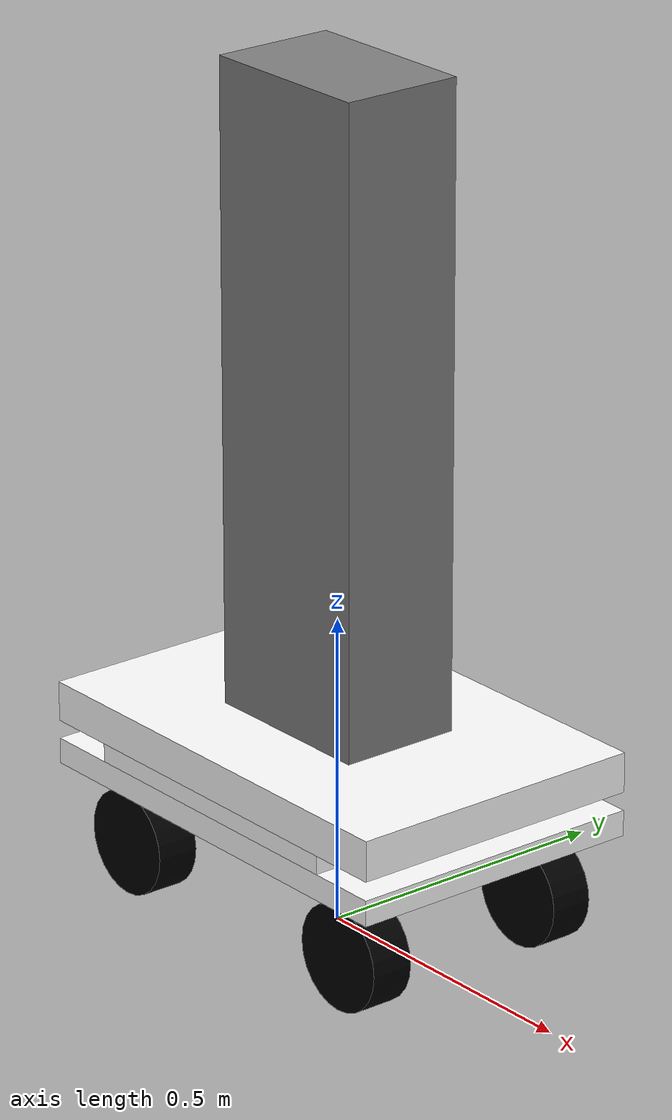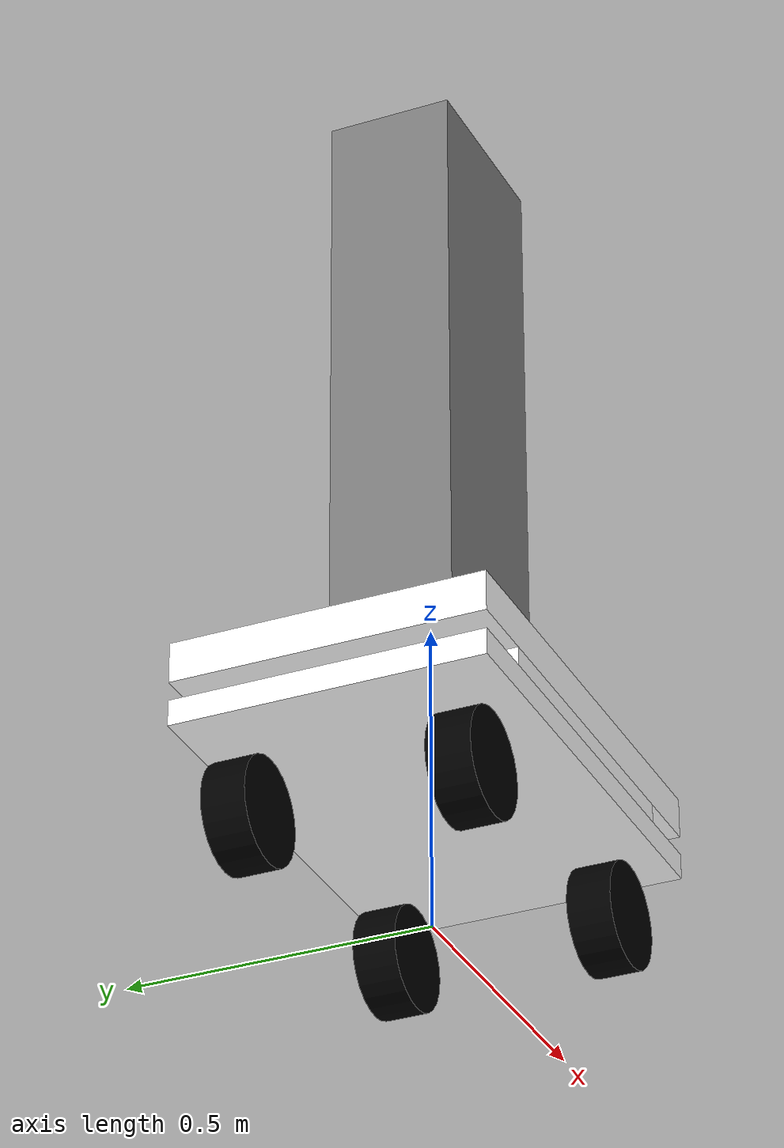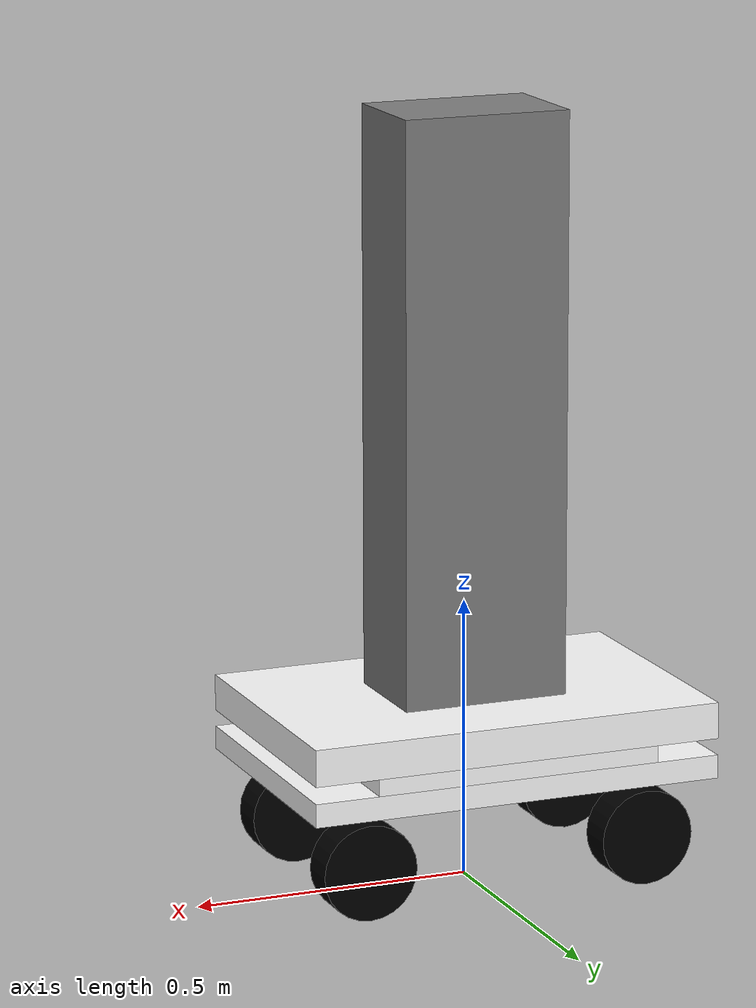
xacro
<?xml version="1.0"?>
<robot name="smartcar" xmlns:xacro="http://www.ros.org/wiki/xacro">
  	<xacro:property name="M_PI" value="3.14159265358"/>

  	<!-- Macro for SmartCar body. Including Gazebo extensions, but does not include Kinect -->
  	<include filename="$(find smartcar_description)/urdf/xacro/smartcar_sim.xacro"/>
	<xacro:include filename="$(find smartcar_description)/urdf/xacro/sensors/lidar.xacro" />
	<xacro:include filename="$(find smartcar_description)/urdf/xacro/sensors/imu.xacro" />

  	<xacro:macro name="smartcar_body">

		<xacro:property name="wheel_m" value="2.0"/>
		<xacro:property name="wheel_r" value="0.085"/>
		<xacro:property name="wheel_h" value="0.07"/>

		<xacro:property name="base_link_H" value="0.042"/>
		<xacro:property name="base_middle_link_H" value="0.03"/>
		<xacro:property name="base_top_link_H" value="0.065"/>
		<xacro:property name="slider_link_H" value="1.031"/>

		<!-- Macro for inertia matrix -->
		<xacro:macro name="cube_inertial_matrix" params="m a b c">
			<inertial>
				<mass value="${m}" />
				<inertia ixx="${m*(b*b+c*c)/12}" ixy="0" ixz="0"
					iyy="${m*(a*a+c*c)/12}" iyz="0"
					izz="${m*(a*a+b*b)/12}" />
			</inertial>
		</xacro:macro>

		<xacro:macro name="sphere_inertial_matrix" params="m r">
			<inertial>
				<mass value="${m}" />
				<inertia ixx="${m**r*r*2/5}" ixy="0" ixz="0"
						 iyy="${m**r*r*2/5}" iyz="0"
						 izz="${m**r*r*2/5}" />
			</inertial>
		</xacro:macro>

		<xacro:macro name="cylinder_inertial_matrix" params="m r h">
			<inertial>
				<mass value="${m}" />
				<inertia ixx="${m*(3*r*r+h*h)/12}" ixy = "0" ixz = "0"
					iyy="${m*(3*r*r+h*h)/12}" iyz = "0"
					izz="${m*r*r/2}" />
			</inertial>
		</xacro:macro>

		<link name="base_footprint">
			<visual>
				<origin xyz="0 0 0" rpy="0 0 0" />
				<geometry>
					<box size="0.001 0.001 0.001" />
				</geometry>
			</visual>
		</link>

		<joint name="base_footprint_joint" type="fixed">
			<origin xyz="0 0 ${0.203 + base_link_H/2}" rpy="0 0 0" />
			<parent link="base_footprint"/>
			<child link="base_link" />
		</joint>

		<link name="base_link">
			<inertial>
				<origin xyz="0 0 0"/>
				<mass value="5.0" />
				<inertia ixx="${5*(0.50*0.50+0.042*0.042)/12}" ixy="0.0" ixz="0.0" iyy="${5*(0.75*0.75+0.042*0.042)/12}" iyz="0.0" izz="${5*(0.5*0.5+0.75*0.75)/12}"/>
			</inertial>
			<visual>
				<origin xyz="0 0 0" rpy="0 0 0" />
				<geometry>
					<box size="0.75 0.50 ${base_link_H}"/>
				</geometry>
				<material name="white">
					<color rgba="1 1 1 1"/>
				</material>
			</visual>
			<collision>
				<origin xyz="0 0 0" rpy="0 0 0" />
				<geometry>
					<box size="0.75 0.50 0.042" />
				</geometry>
			</collision>
		</link>

		<joint name="base_middle_joint" type="fixed">
			<origin xyz="0 0 ${(base_link_H + base_middle_link_H) / 2}" rpy="0 0 0" />
			<parent link="base_link"/>
			<child link="base_middle_link" />
		</joint>

		<link name="base_middle_link">
			<xacro:cube_inertial_matrix m="1.0" a="0.52" b="0.50" c="${base_middle_link_H}" />
			<visual>
				<origin xyz="0 0 0" rpy="0 0 0" />
				<geometry>
					<box size="0.52 0.50 ${base_middle_link_H}"/>
				</geometry>
				<material name="white">
					<color rgba="1 1 1 1"/>
				</material>
			</visual>
			<collision>
				<origin xyz="0 0 0" rpy="0 0 0" />
				<geometry>
					<box size="0.52 0.50 ${base_middle_link_H}" />
				</geometry>
			</collision>
		</link>

		<joint name="base_top_joint" type="fixed">
			<origin xyz="0 0 ${(base_top_link_H + base_middle_link_H) / 2}" rpy="0 0 0" />
			<parent link="base_middle_link"/>
			<child link="base_top_link" />
		</joint>

		<link name="base_top_link">
			<xacro:cube_inertial_matrix m="1.0" a="0.75" b="0.50" c="${base_top_link_H}" />
			<visual>
				<origin xyz="0 0 0" rpy="0 0 0" />
				<geometry>
					<box size="0.75 0.50 ${base_top_link_H}"/>
				</geometry>
				<material name="white">
					<color rgba="1 1 1 1"/>
				</material>
			</visual>
			<collision>
				<origin xyz="0 0 0" rpy="0 0 0" />
				<geometry>
					<box size="0.75 0.50 ${base_top_link_H}" />
				</geometry>
			</collision>
		</link>

		<joint name="base_column_joint" type="fixed">
			<axis xyz="1 0 0"/>
			<origin xyz="0 0 ${(base_top_link_H + slider_link_H) / 2}" rpy="0 0 0" />
			<parent link="base_top_link"/>
			<child link="column_link" />
		</joint>

		<link name="column_link">
			<xacro:cube_inertial_matrix m="10.0" a="0.3" b="0.2" c="${slider_link_H}" />
			<visual>
				<origin xyz="0 0 0" rpy="0 0 0" />
				<geometry>
					<box size="0.3 0.2 ${slider_link_H}"/>
				</geometry>
				<material name="gray">
					<color rgba="0.5 0.5 0.5 1"/>
				</material>
			</visual>
			<collision>
				<origin xyz="0 0 0" rpy="0 0 0" />
				<geometry>
					<box size="0.3 0.2 ${slider_link_H}" />
				</geometry>
			</collision>
		</link>

		<link name="left_front_wheel">
			<xacro:cylinder_inertial_matrix m="${wheel_m}" r="${wheel_r}" h="${wheel_h}"/>
			<visual>
				<origin rpy="0 0 0" xyz="0 0 0"/>
				<geometry>
					<cylinder length="${wheel_h}" radius="${wheel_r}"/>
				</geometry>
				<material name="black">
					<color rgba="0 0 0 1"/>
				</material>
			</visual>
			<collision>
				<origin rpy="0 0 0" xyz="0 0 0"/>
				<geometry>
					<cylinder length="${wheel_h}" radius="${wheel_r}"/>
				</geometry>
			</collision>
		</link>
		<link name="right_front_wheel">
			<xacro:cylinder_inertial_matrix m="${wheel_m}" r="${wheel_r}" h="${wheel_h}"/>
			<visual>
				<origin rpy="0 0 0" xyz="0 0 0"/>
				<geometry>
					<cylinder length="${wheel_h}" radius="${wheel_r}"/>
				</geometry>
				<material name="black">
					<color rgba="0 0 0 1"/>
				</material>
			</visual>
			<collision>
				<origin rpy="0 0 0" xyz="0 0 0"/>
				<geometry>
					<cylinder length="${wheel_h}" radius="${wheel_r}"/>
				</geometry>
			</collision>
		</link>
		<link name="left_back_wheel">
			<xacro:cylinder_inertial_matrix m="${wheel_m}" r="${wheel_r}" h="${wheel_h}"/>
			<visual>
				<origin rpy="0 0 0" xyz="0 0 0"/>
				<geometry>
					<cylinder length="${wheel_h}" radius="${wheel_r}"/>
				</geometry>
				<material name="black">
					<color rgba="0 0 0 1"/>
				</material>
			</visual>
			<collision>
				<origin rpy="0 0 0" xyz="0 0 0"/>
				<geometry>
					<cylinder length="${wheel_h}" radius="${wheel_r}"/>
				</geometry>
			</collision>
		</link>

		<link name="right_back_wheel">
			<xacro:cylinder_inertial_matrix m="${wheel_m}" r="${wheel_r}" h="${wheel_h}"/>
			<visual>
				<origin rpy="0 0 0" xyz="0 0 0"/>
				<geometry>
					<cylinder length="${wheel_h}" radius="${wheel_r}"/>
				</geometry>
				<material name="black">
					<color rgba="0 0 0 1"/>
				</material>
			</visual>
			<collision>
				<origin rpy="0 0 0" xyz="0 0 0"/>
				<geometry>
					<cylinder length="${wheel_h}" radius="${wheel_r}"/>
				</geometry>
			</collision>
		</link>

		<link name="left_bridge">
			<xacro:sphere_inertial_matrix m="1.0" r="0.02"/>
			<visual>
				<origin rpy="0 0 0" xyz="0 0 0"/>
				<geometry>
					<sphere radius="0.02" />
				</geometry>
				<material name="red">
					<color rgba="1 0 0 1"/>
				</material>
			</visual>
		</link>

		<joint name="left_bridge_to_bridge" type="revolute">
			<parent link="base_link"/>
			<child link="left_bridge"/>
			<origin rpy="0 0 ${M_PI/2}" xyz="0.26 0.175 -0.128"/>
			<axis xyz="0 0 1" />
			<dynamics damping="0.1"/>
			<limit effort="200" velocity="20" lower="-1.5707" upper="1.5707" />
			<joint_properties damping="20.0" friction="20.0"/>
		</joint>

		<link name="right_bridge">
			<xacro:sphere_inertial_matrix m="1.0" r="0.02"/>
			<visual>
				<origin rpy="0 0 0" xyz="0 0 0"/>
				<geometry>
					<sphere radius="0.02" />
				</geometry>
				<material name="red">
					<color rgba="1 0 0 1"/>
				</material>
			</visual>
		</link>

		<joint name="right_bridge_to_bridge" type="revolute">
			<parent link="base_link"/>
			<child link="right_bridge"/>
			<origin rpy="0 0 ${M_PI/2}" xyz="0.26 -0.175 -0.128"/>
			<axis xyz="0 0 1" />
			<dynamics damping="0.1"/>
			<limit effort="200" velocity="20" lower="-1.5707" upper="1.5707" />
			<joint_properties damping="20.0" friction="20.0"/>
		</joint>

		<joint name="right_front_wheel_joint" type="continuous">
			<axis xyz="0 0 1"/>
			<parent link="right_bridge"/>
			<child link="right_front_wheel"/>
			<origin rpy="0 ${M_PI/2} 0" xyz="0 0 0"/>
			<dynamics damping="0.0"/>
			<limit effort="100" velocity="100"/>
			<joint_properties damping="20.0" friction="20.0"/>
		</joint>

		<joint name="left_front_wheel_joint" type="continuous">
			<axis xyz="0 0 1"/>
			<parent link="left_bridge"/>
			<child link="left_front_wheel"/>
			<origin rpy="0 ${M_PI/2} 0" xyz="0 -0 0"/>
			<dynamics damping="0.0"/>
			<limit effort="100" velocity="100"/>
			<joint_properties damping="20.0" friction="20.0"/>
		</joint>

		<joint name="right_back_wheel_joint" type="continuous">
			<axis xyz="0 0 1"/>
			<parent link="right_back_bridge"/>
			<child link="right_back_wheel"/>
			<origin rpy="0 ${M_PI/2} 0" xyz="0 0 0"/>
			<dynamics damping="0.0"/>
			<limit effort="100" velocity="100"/>
			<joint_properties damping="20.0" friction="20.0"/>
		</joint>

		<joint name="left_back_wheel_joint" type="continuous">
			<axis xyz="0 0 1"/>
			<parent link="left_back_bridge"/>
			<child link="left_back_wheel"/>
			<origin rpy="0 ${M_PI/2} 0" xyz="0 -0 0"/>
			<dynamics damping="0.0"/>
			<limit effort="100" velocity="100"/>
			<joint_properties damping="10.0" friction="10.0"/>
		</joint>

		<link name="right_back_bridge">
			<xacro:sphere_inertial_matrix m="1.0" r="0.02"/>
			<visual>
				<origin rpy="0 0 0" xyz="0 0 0"/>
				<geometry>
					<sphere radius="0.02" />
				</geometry>
				<material name="red">
					<color rgba="1 0 0 1"/>
				</material>
			</visual>
		</link>

		<joint name="right_back_bridge_to_bridge" type="revolute">
			<parent link="base_link"/>
			<child link="right_back_bridge"/>
			<origin rpy="0 0 ${M_PI/2}" xyz="-0.26 -0.175 -0.128"/>
			<axis xyz="0 0 1" />
			<dynamics damping="0.1"/>
			<limit effort="200" velocity="20" lower="-1.5707" upper="1.5707" />
			<joint_properties damping="10.0" friction="10.0"/>
		</joint>

		<link name="left_back_bridge">
			<xacro:sphere_inertial_matrix m="1.0" r="0.02"/>
			<visual>
				<origin rpy="0 0 0" xyz="0 0 0"/>
				<geometry>
					<sphere radius="0.02" />
				</geometry>
				<material name="red">
					<color rgba="1 0 0 1"/>
				</material>
			</visual>
		</link>

		<joint name="left_back_bridge_to_bridge" type="revolute">
			<parent link="base_link"/>
			<child link="left_back_bridge"/>
			<origin rpy="0 0 ${M_PI/2}" xyz="-0.26 0.175 -0.128"/>
			<axis xyz="0 0 1" />
			<dynamics damping="0.1"/>
			<limit effort="200" velocity="20" lower="-1.5707" upper="1.5707" />
			<joint_properties damping="10.0" friction="10.0"/>
		</joint>

	<!--	Sensors-->

		<xacro:imu prefix="imu"/>

		<joint name="imu_joint" type="fixed">
			<origin xyz="0.0 0 0" rpy="0 0 0" />
			<parent link="base_link"/>
			<child link="imu_link"/>
		</joint>

	</xacro:macro>

	<!-- Call the smartcar_body macro to instantiate the robot -->
	<xacro:smartcar_body />

</robot>

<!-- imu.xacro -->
<robot xmlns:xacro="http://www.ros.org/wiki/xacro" name="imu">

    <xacro:macro name="imu" params="prefix:=imu">
        <!-- Create laser reference frame -->
        <link name="${prefix}_link">
            <inertial>
                <mass value="0.001" />
                <origin xyz="0 0 0" />
                <inertia ixx="0.001" ixy="0.0" ixz="0.0"
                         iyy="0.001" iyz="0.0"
                         izz="0.001" />
            </inertial>

            <visual>
                <origin xyz=" 0 0 0 " rpy="0 0 0" />
                <geometry>
                    <box size="0.02 0.01 0.01" />
                </geometry>
                <material name="black"/>
            </visual>

        </link>
        <gazebo reference="${prefix}_link">
            <material>Gazebo/Black</material>
        </gazebo>

        <gazebo reference="${prefix}_link">
            <gravity>true</gravity>
            <sensor name="imu_sensor" type="imu">
                <always_on>true</always_on>
                <update_rate>100</update_rate>
                <visualize>true</visualize>
                <topic>/imu_data</topic>
                <plugin filename="libgazebo_ros_imu_sensor.so" name="imu_plugin">
                    <topicName>/imu_data</topicName>
                    <bodyName>imu_link</bodyName>
                    <updateRateHZ>100.0</updateRateHZ>
                    <gaussianNoise>0.0</gaussianNoise>
                    <xyzOffset>0 0 0</xyzOffset>
                    <rpyOffset>0 0 0</rpyOffset>
                    <frameName>imu_link</frameName>
                </plugin>
                <pose>0 0 0 0 0 0</pose>
            </sensor>
        </gazebo>

    </xacro:macro>
</robot>
